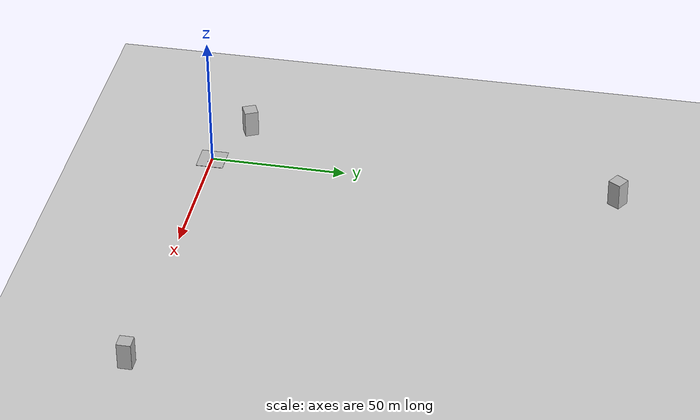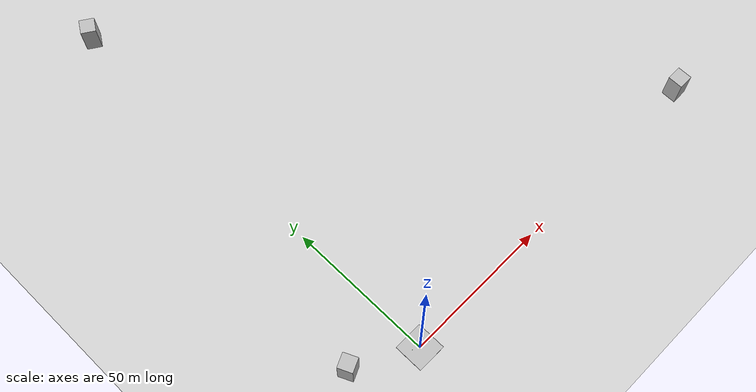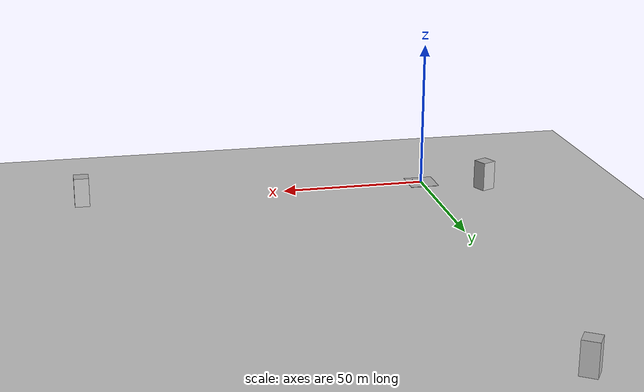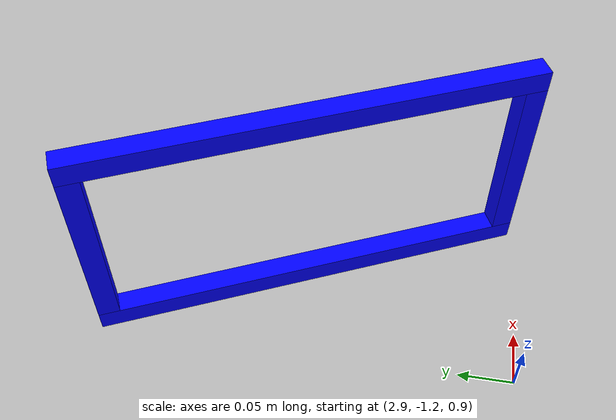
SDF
<sdf version="1.5">
 <world name="default">
  <scene><ambient>0.7 0.7 0.7 1.0</ambient><shadows>true</shadows></scene>
  <include><uri>model://sun</uri></include>
  <include><uri>model://ground_plane</uri></include>
  <spherical_coordinates>
   <surface_model>EARTH_WGS84</surface_model>
   <latitude_deg>0</latitude_deg>
   <longitude_deg>0</longitude_deg>
   <elevation>0</elevation>
   <heading_deg>0</heading_deg>
  </spherical_coordinates>
  <include><name>building1</name><uri>model://house</uri><pose>120 0 5 0 0 0</pose></include>
  <include><name>building2</name><uri>model://house</uri><pose>0 150 5 0 0 1</pose></include>
  <include><name>building3</name><uri>model://house</uri><pose>-20 10 5 0 0 2</pose></include>
  <include><name>floor</name><uri>model://floor</uri><pose>0 0 0.025 0 0 0</pose></include>
  <include><name>frame_red</name><uri>model://frame_red</uri><pose>3 2 2 0 0 6</pose></include>
  <include><name>frame_green</name><uri>model://frame_green</uri><pose>-2 1 0.5 0 0 8</pose></include>
  <include><name>frame_blue</name><uri>model://frame_blue</uri><pose>3 -1 1 0 0 13</pose></include>
 </world>
</sdf>

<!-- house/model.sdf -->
<sdf version="1.5">

	<model name="house">
	  <static>true</static>
	  <link name="link">

	    <collision name="collision">

		    <geometry>
		      <box>
		        <size>5 5 10</size>
		      </box>
		    </geometry>

        <surface>
          <friction>
            <ode>
              <mu>100.0</mu>
              <mu2>50.0</mu2>
              <slip1>0.0</slip1>
              <slip2>0.0</slip2>
            </ode>
          </friction>
        </surface>

	    </collision>

      <visual name="visual">
		    <geometry>
		      <box>
		        <size>5 5 10</size>
		      </box>
		    </geometry>
	    </visual>

	  </link>
	</model>

</sdf>

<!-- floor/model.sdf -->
<sdf version="1.5">

  <model name='floor'>
    <static>true</static>
    <link name='link'>
      <collision name='collisionsuelo'>
        <geometry>
          <box>
            <size>10 10 0.1</size>
          </box>
        </geometry>

        <surface>
          <friction>
            <ode>
              <mu>100.0</mu>
              <mu2>50.0</mu2>
              <slip1>0.0</slip1>
              <slip2>0.0</slip2>
            </ode>
          </friction>
        </surface>

      </collision>

      <visual name='visualsuelo'>
        <geometry>
          <box>
            <size>10 10 0.1</size>
          </box>
        </geometry>
        <material>
          <script>

            <uri>model://DC/floor/scripts</uri>
            <uri>model://DC/floor/materials</uri>
            <name>floorMat/Diffuse</name>
          </script>
        </material>
      </visual>
      <self_collide>0</self_collide>
      <kinematic>0</kinematic>
      <gravity>1</gravity>
    </link>
  </model>

</sdf>

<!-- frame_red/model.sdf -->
<sdf version="1.5">
<model name="frame_red">

<static>true</static>

<link name='framelink'>
    <!-- Marco de 40x20 cms. Borde de 3cms. -->

    <visual name='up'>
        <pose>0 0 0.10 0 0 0</pose>
        <geometry>
          <box>
            <size>0.02 0.42 0.02</size>
          </box>
        </geometry>
        <material>
          <ambient>1 0 0 1</ambient>
          <diffuse>1 0 0 1</diffuse>
        </material>
    </visual>

    <collision name='up_c'>
        <pose>0 0 0.10 0 0 0</pose>
        <geometry>
          <box>
            <size>0.02 0.42 0.02</size>
          </box>
        </geometry>
        <surface>
          <friction>
            <ode>
              <mu>0.1</mu>
              <mu2>0.2</mu2>
              <slip1>1.0</slip1>
              <slip2>1.0</slip2>
            </ode>
          </friction>
        </surface>
    </collision>

    <visual name='down'>
        <pose>0 0 -0.10 0 0 0</pose>
        <geometry>
          <box>
            <size>0.02 0.42 0.02</size>
          </box>
        </geometry>
        <material>
          <ambient>1 0 0 1</ambient>
          <diffuse>1 0 0 1</diffuse>
        </material>
    </visual>

    <collision name='down_c'>
        <pose>0 0 -0.10 0 0 0</pose>
        <geometry>
          <box>
            <size>0.02 0.42 0.02</size>
          </box>
        </geometry>
        <surface>
          <friction>
            <ode>
              <mu>0.1</mu>
              <mu2>0.2</mu2>
              <slip1>1.0</slip1>
              <slip2>1.0</slip2>
            </ode>
          </friction>
        </surface>
    </collision>

    <visual name='left'>
        <pose>0 -0.20 0 0 0 0</pose>
        <geometry>
          <box>
            <size>0.02 0.02 0.18</size>
          </box>
        </geometry>
        <material>
          <ambient>1 0 0 1</ambient>
          <diffuse>1 0 0 1</diffuse>
        </material>
    </visual>

    <collision name='left_c'>
        <pose>0 -0.20 0 0 0 0</pose>
        <geometry>
          <box>
            <size>0.02 0.02 0.18</size>
          </box>
        </geometry>
        <surface>
          <friction>
            <ode>
              <mu>0.1</mu>
              <mu2>0.2</mu2>
              <slip1>1.0</slip1>
              <slip2>1.0</slip2>
            </ode>
          </friction>
        </surface>
    </collision>

    <visual name='right'>
        <pose>0 0.20 0 0 0 0</pose>
        <geometry>
          <box>
            <size>0.02 0.02 0.18</size>
          </box>
        </geometry>
        <material>
          <ambient>1 0 0 1</ambient>
          <diffuse>1 0 0 1</diffuse>
        </material>
    </visual>

    <collision name='right_c'>
        <pose>0 0.20 0 0 0 0</pose>
        <geometry>
          <box>
            <size>0.02 0.02 0.18</size>
          </box>
        </geometry>
        <surface>
          <friction>
            <ode>
              <mu>0.1</mu>
              <mu2>0.2</mu2>
              <slip1>1.0</slip1>
              <slip2>1.0</slip2>
            </ode>
          </friction>
        </surface>
    </collision>

</link>

</model>

</sdf>

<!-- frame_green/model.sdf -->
<sdf version="1.5">
<model name="frame_green">

<static>true</static>

<link name='framelink'>
    <!-- Marco de 40x20 cms. Borde de 3cms. -->

    <visual name='up'>
        <pose>0 0 0.10 0 0 0</pose>
        <geometry>
          <box>
            <size>0.02 0.42 0.02</size>
          </box>
        </geometry>
        <material>
          <ambient>0 1 0 1</ambient>
          <diffuse>0 1 0 1</diffuse>
        </material>
    </visual>

    <collision name='up_c'>
        <pose>0 0 0.10 0 0 0</pose>
        <geometry>
          <box>
            <size>0.02 0.42 0.02</size>
          </box>
        </geometry>
        <surface>
          <friction>
            <ode>
              <mu>0.1</mu>
              <mu2>0.2</mu2>
              <slip1>1.0</slip1>
              <slip2>1.0</slip2>
            </ode>
          </friction>
        </surface>
    </collision>

    <visual name='down'>
        <pose>0 0 -0.10 0 0 0</pose>
        <geometry>
          <box>
            <size>0.02 0.42 0.02</size>
          </box>
        </geometry>
        <material>
          <ambient>0 1 0 1</ambient>
          <diffuse>0 1 0 1</diffuse>
        </material>
    </visual>

    <collision name='down_c'>
        <pose>0 0 -0.10 0 0 0</pose>
        <geometry>
          <box>
            <size>0.02 0.42 0.02</size>
          </box>
        </geometry>
        <surface>
          <friction>
            <ode>
              <mu>0.1</mu>
              <mu2>0.2</mu2>
              <slip1>1.0</slip1>
              <slip2>1.0</slip2>
            </ode>
          </friction>
        </surface>
    </collision>

    <visual name='left'>
        <pose>0 -0.20 0 0 0 0</pose>
        <geometry>
          <box>
            <size>0.02 0.02 0.18</size>
          </box>
        </geometry>
        <material>
          <ambient>0 1 0 1</ambient>
          <diffuse>0 1 0 1</diffuse>
        </material>
    </visual>

    <collision name='left_c'>
        <pose>0 -0.20 0 0 0 0</pose>
        <geometry>
          <box>
            <size>0.02 0.02 0.18</size>
          </box>
        </geometry>
        <surface>
          <friction>
            <ode>
              <mu>0.1</mu>
              <mu2>0.2</mu2>
              <slip1>1.0</slip1>
              <slip2>1.0</slip2>
            </ode>
          </friction>
        </surface>
    </collision>

    <visual name='right'>
        <pose>0 0.20 0 0 0 0</pose>
        <geometry>
          <box>
            <size>0.02 0.02 0.18</size>
          </box>
        </geometry>
        <material>
          <ambient>0 1 0 1</ambient>
          <diffuse>0 1 0 1</diffuse>
        </material>
    </visual>

    <collision name='right_c'>
        <pose>0 0.20 0 0 0 0</pose>
        <geometry>
          <box>
            <size>0.02 0.02 0.18</size>
          </box>
        </geometry>
        <surface>
          <friction>
            <ode>
              <mu>0.1</mu>
              <mu2>0.2</mu2>
              <slip1>1.0</slip1>
              <slip2>1.0</slip2>
            </ode>
          </friction>
        </surface>
    </collision>

</link>

</model>

</sdf>

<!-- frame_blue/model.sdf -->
<sdf version="1.5">
<model name="frame_blue">

<static>true</static>

<link name='framelink'>
    <!-- Marco de 40x20 cms. Borde de 3cms. -->

    <visual name='up'>
        <pose>0 0 0.10 0 0 0</pose>
        <geometry>
          <box>
            <size>0.02 0.42 0.02</size>
          </box>
        </geometry>
        <material>
          <ambient>0 0 1 1</ambient>
          <diffuse>0 0 1 1</diffuse>
        </material>
    </visual>

    <collision name='up_c'>
        <pose>0 0 0.10 0 0 0</pose>
        <geometry>
          <box>
            <size>0.02 0.42 0.02</size>
          </box>
        </geometry>
        <surface>
          <friction>
            <ode>
              <mu>0.1</mu>
              <mu2>0.2</mu2>
              <slip1>1.0</slip1>
              <slip2>1.0</slip2>
            </ode>
          </friction>
        </surface>
    </collision>

    <visual name='down'>
        <pose>0 0 -0.10 0 0 0</pose>
        <geometry>
          <box>
            <size>0.02 0.42 0.02</size>
          </box>
        </geometry>
        <material>
          <ambient>0 0 1 1</ambient>
          <diffuse>0 0 1 1</diffuse>
        </material>
    </visual>

    <collision name='down_c'>
        <pose>0 0 -0.10 0 0 0</pose>
        <geometry>
          <box>
            <size>0.02 0.42 0.02</size>
          </box>
        </geometry>
        <surface>
          <friction>
            <ode>
              <mu>0.1</mu>
              <mu2>0.2</mu2>
              <slip1>1.0</slip1>
              <slip2>1.0</slip2>
            </ode>
          </friction>
        </surface>
    </collision>

    <visual name='left'>
        <pose>0 -0.20 0 0 0 0</pose>
        <geometry>
          <box>
            <size>0.02 0.02 0.18</size>
          </box>
        </geometry>
        <material>
          <ambient>0 0 1 1</ambient>
          <diffuse>0 0 1 1</diffuse>
        </material>
    </visual>

    <collision name='left_c'>
        <pose>0 -0.20 0 0 0 0</pose>
        <geometry>
          <box>
            <size>0.02 0.02 0.18</size>
          </box>
        </geometry>
        <surface>
          <friction>
            <ode>
              <mu>0.1</mu>
              <mu2>0.2</mu2>
              <slip1>1.0</slip1>
              <slip2>1.0</slip2>
            </ode>
          </friction>
        </surface>
    </collision>

    <visual name='right'>
        <pose>0 0.20 0 0 0 0</pose>
        <geometry>
          <box>
            <size>0.02 0.02 0.18</size>
          </box>
        </geometry>
        <material>
          <ambient>0 0 1 1</ambient>
          <diffuse>0 0 1 1</diffuse>
        </material>
    </visual>

    <collision name='right_c'>
        <pose>0 0.20 0 0 0 0</pose>
        <geometry>
          <box>
            <size>0.02 0.02 0.18</size>
          </box>
        </geometry>
        <surface>
          <friction>
            <ode>
              <mu>0.1</mu>
              <mu2>0.2</mu2>
              <slip1>1.0</slip1>
              <slip2>1.0</slip2>
            </ode>
          </friction>
        </surface>
    </collision>

</link>

</model>

</sdf>
